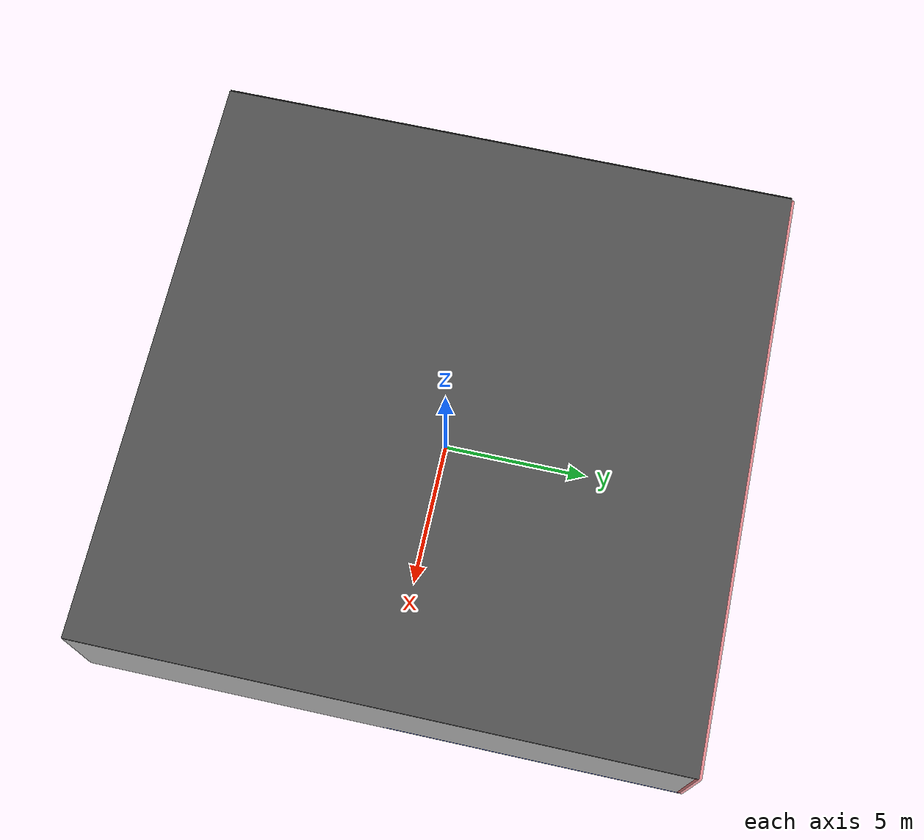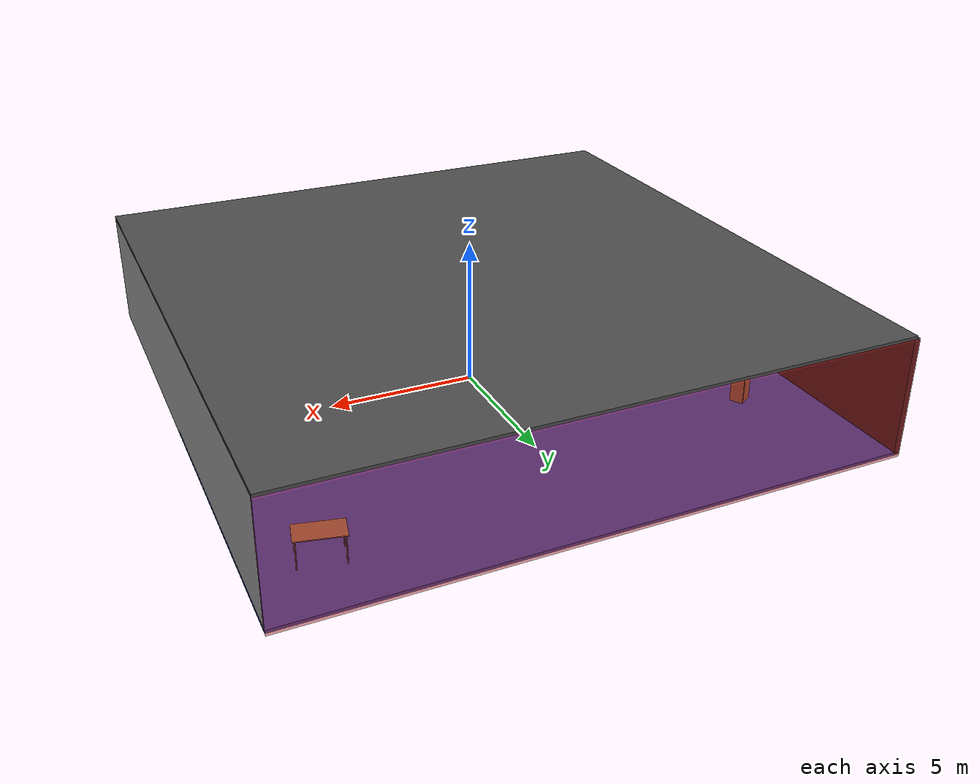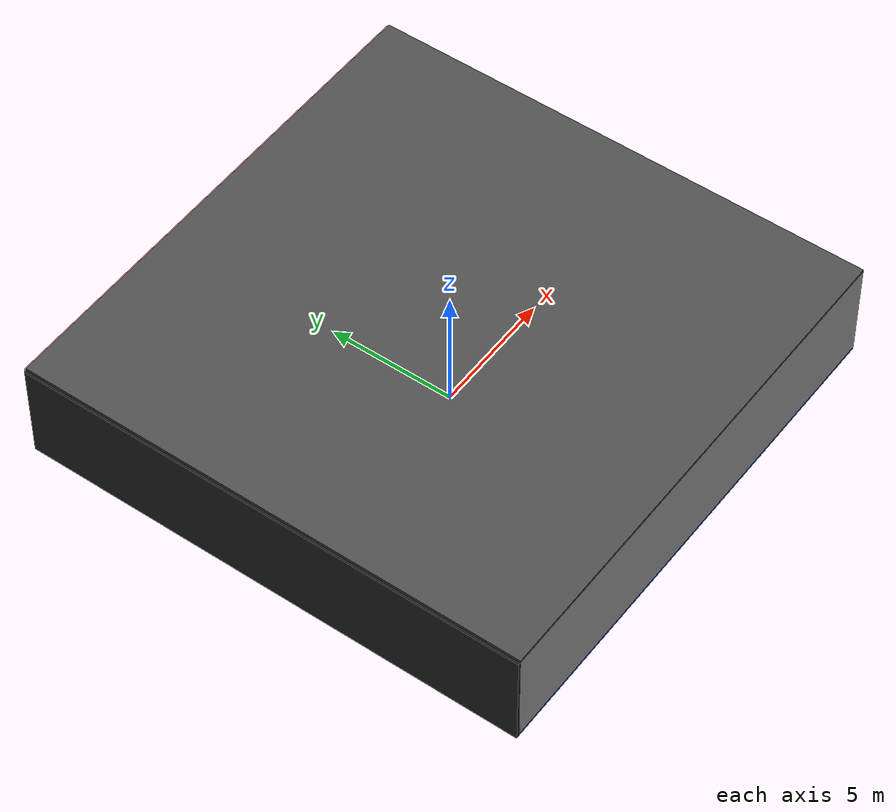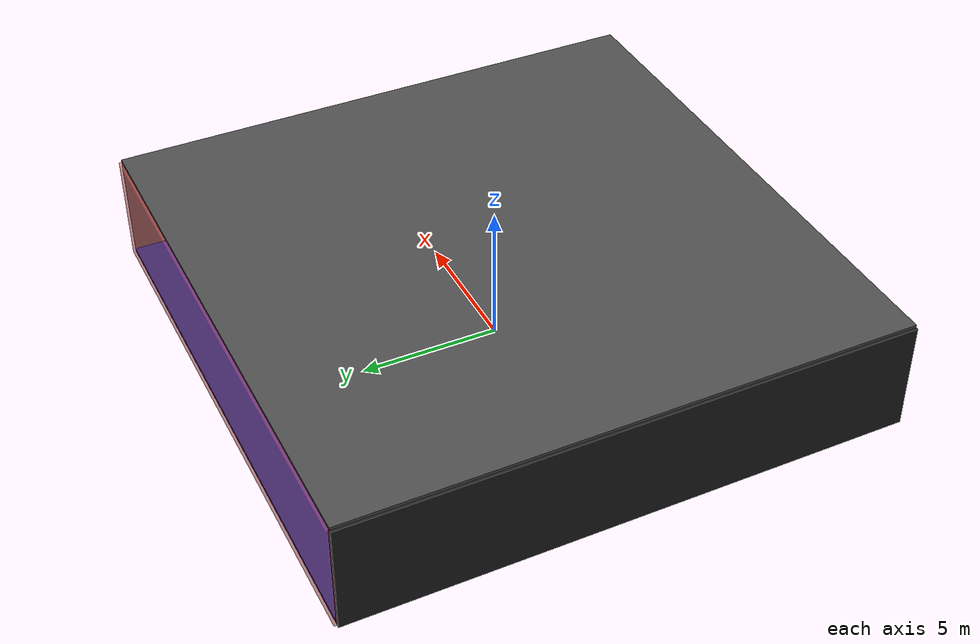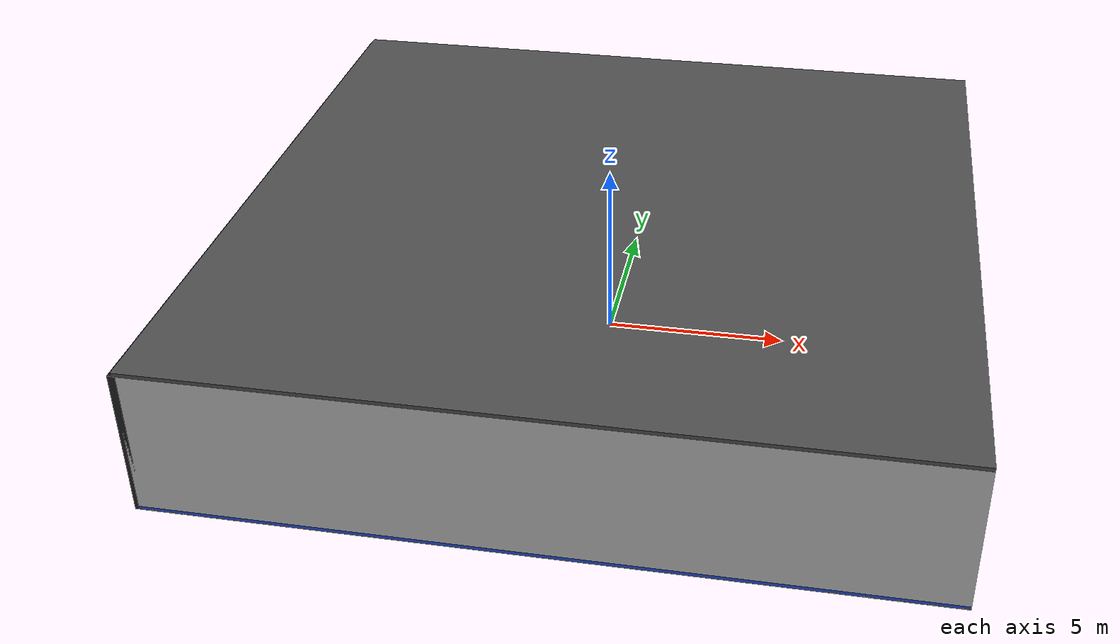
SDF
<sdf version="1.4">
 <world name="default">
  <physics type="ode">
   <max_step_size>0.001</max_step_size>
   <real_time_factor>1</real_time_factor>
   <real_time_update_rate>1000</real_time_update_rate>
   <gravity>0 0 -9.8</gravity>
  </physics>
  <scene><ambient>0.4 0.4 0.4 1</ambient><background>0.7 0.7 0.7 1</background><shadows>1</shadows></scene>
  <model name="Surrounding">
   <static>1</static>
   <link name="Ceiling">
    <collision name="Ceiling_Collision"><geometry><box><size>20 20 0.1</size></box></geometry></collision>
    <visual name="Ceiling_Visual">
     <geometry><box><size>20 20 0.1</size></box></geometry>
     <material>
      <script><uri>file://media/materials/scripts/gazebo.material</uri><name>Gazebo/Road</name></script>
     </material>
    </visual>
    <pose>0 0 4.05 0 0 0</pose>
   </link>
   <link name="Wall_South">
    <collision name="Wall_South_Collision">
     <geometry><box><size>20 0 4</size></box></geometry>
     <pose>0 0 2 0 -0 0</pose>
    </collision>
    <visual name="Wall_South_Visual">
     <pose>0 0 2 0 -0 0</pose>
     <geometry><box><size>20 0 4</size></box></geometry>
     <material>
      <script><uri>file://media/materials/scripts/gazebo.material</uri><name>Gazebo/PioneerBody</name></script>
     </material>
    </visual>
    <velocity_decay><linear>0</linear><angular>0</angular></velocity_decay>
    <pose>0 -10 0 0 -0 0</pose>
   </link>
   <link name="Wall_East">
    <collision name="Wall_21_Collision">
     <geometry><box><size>20 0 4</size></box></geometry>
     <pose>0 0 2 0 -0 0</pose>
    </collision>
    <visual name="Wall_21_Visual">
     <pose>0 0 2 0 -0 0</pose>
     <geometry><box><size>20 0 4</size></box></geometry>
     <material>
      <script><uri>file://media/materials/scripts/gazebo.material</uri><name>Gazebo/Pioneer2Body</name></script>
     </material>
    </visual>
    <velocity_decay><linear>0</linear><angular>0</angular></velocity_decay>
    <pose>10 0 0 0 -0 1.5708</pose>
   </link>
   <link name="Wall_North">
    <collision name="Wall_22_Collision">
     <geometry><box><size>20 0.2 4</size></box></geometry>
     <pose>0 0 2 0 -0 0</pose>
    </collision>
    <visual name="Wall_22_Visual">
     <pose>0 0 2 0 -0 0</pose>
     <geometry><box><size>20 0.2 4</size></box></geometry>
     <material>
      <script><uri>file://media/materials/scripts/gazebo.material</uri><name>Gazebo/RedTransparent</name></script>
     </material>
    </visual>
    <velocity_decay><linear>0</linear><angular>0</angular></velocity_decay>
    <pose>0 10 0 0 -0 0</pose>
   </link>
   <link name="Wall_West">
    <collision name="Wall_23_Collision">
     <geometry><box><size>20 0.2 4</size></box></geometry>
     <pose>0 0 2 0 -0 0</pose>
    </collision>
    <visual name="Wall_23_Visual">
     <pose>0 0 2 0 -0 0</pose>
     <geometry><box><size>20 0.2 4</size></box></geometry>
     <material>
      <script><uri>file://media/materials/scripts/gazebo.material</uri><name>Gazebo/FlatBlack</name></script>
     </material>
    </visual>
    <velocity_decay><linear>0</linear><angular>0</angular></velocity_decay>
    <pose>-10 0 0 0 0 -1.5708</pose>
   </link>
   <link name="Ground_link">
    <collision name="collision">
     <pose>0 0 .05 0 -0 0</pose>
     <geometry><box><size>20 20 0.1</size></box></geometry>
    </collision>
    <visual name="visual">
     <pose>0 0 .05 0 -0 0</pose>
     <geometry><box><size>20 20 0.1</size></box></geometry>
     <material>
      <script><uri>file://media/materials/scripts/gazebo.material</uri><name>Gazebo/BlueLaser</name></script>
     </material>
    </visual>
   </link>
   <static>1</static>
  </model>
  <spherical_coordinates>
   <surface_model>EARTH_WGS84</surface_model>
   <latitude_deg>0</latitude_deg>
   <longitude_deg>0</longitude_deg>
   <elevation>0</elevation>
   <heading_deg>0</heading_deg>
  </spherical_coordinates>
  <light name="lightball_0" type="diffuse">
   <diffuse>0.8 0.8 0.8 1</diffuse>
   <specular>0.2 0.2 0.2 1</specular>
   <attenuation>
    <range>100</range>
    <constant>0.7</constant>
    <linear>0.01</linear>
    <quadratic>0.001</quadratic>
   </attenuation>
   <direction>-0.5 0.1 -0.9</direction>
   <pose>4.24696940294 4.88055297579 1.70848335105 0 0 0</pose>
  </light>
  <light name="lightball_1" type="diffuse">
   <diffuse>0.8 0.8 0.8 1</diffuse>
   <specular>0.2 0.2 0.2 1</specular>
   <attenuation>
    <range>100</range>
    <constant>0.7</constant>
    <linear>0.01</linear>
    <quadratic>0.001</quadratic>
   </attenuation>
   <direction>-0.5 0.1 -0.9</direction>
   <pose>-4.84952494038 1.5995775421 1.14299998437 0 0 0</pose>
  </light>
  <light name="lightball_2" type="diffuse">
   <diffuse>0.8 0.8 0.8 1</diffuse>
   <specular>0.2 0.2 0.2 1</specular>
   <attenuation>
    <range>100</range>
    <constant>0.7</constant>
    <linear>0.01</linear>
    <quadratic>0.001</quadratic>
   </attenuation>
   <direction>-0.5 0.1 -0.9</direction>
   <pose>8.88864777788 4.20122256462 1.74813926389 0 0 0</pose>
  </light>
  <light name="lightball_3" type="diffuse">
   <diffuse>0.8 0.8 0.8 1</diffuse>
   <specular>0.2 0.2 0.2 1</specular>
   <attenuation>
    <range>100</range>
    <constant>0.7</constant>
    <linear>0.01</linear>
    <quadratic>0.001</quadratic>
   </attenuation>
   <direction>-0.5 0.1 -0.9</direction>
   <pose>2.48301458618 0.890316813671 0.913913090073 0 0 0</pose>
  </light>
  <light name="lightball_4" type="diffuse">
   <diffuse>0.8 0.8 0.8 1</diffuse>
   <specular>0.2 0.2 0.2 1</specular>
   <attenuation>
    <range>100</range>
    <constant>0.7</constant>
    <linear>0.01</linear>
    <quadratic>0.001</quadratic>
   </attenuation>
   <direction>-0.5 0.1 -0.9</direction>
   <pose>-6.5516092851 -2.36241911765 0.530192536359 0 0 0</pose>
  </light>
  <light name="lightball_5" type="diffuse">
   <diffuse>0.8 0.8 0.8 1</diffuse>
   <specular>0.2 0.2 0.2 1</specular>
   <attenuation>
    <range>100</range>
    <constant>0.7</constant>
    <linear>0.01</linear>
    <quadratic>0.001</quadratic>
   </attenuation>
   <direction>-0.5 0.1 -0.9</direction>
   <pose>-4.1774446178 -2.00629309089 0.987547956798 0 0 0</pose>
  </light>
  <light name="lightball_6" type="diffuse">
   <diffuse>0.8 0.8 0.8 1</diffuse>
   <specular>0.2 0.2 0.2 1</specular>
   <attenuation>
    <range>100</range>
    <constant>0.7</constant>
    <linear>0.01</linear>
    <quadratic>0.001</quadratic>
   </attenuation>
   <direction>-0.5 0.1 -0.9</direction>
   <pose>9.83585178013 3.30971995937 2.68891817776 0 0 0</pose>
  </light>
  <include><uri>model://cabinet</uri><pose>-7.53742905655 5.24659353898 0 0 0 2.0984468712</pose></include>
  <include><uri>model://cabinet</uri><pose>-4.27261864754 1.3233610644 0 0 0 1.97901267224</pose></include>
  <include>
   <uri>model://robocup_3Dsim_goal</uri>
   <pose>1.17104848452 -2.15725951158 0 0 0 1.1308671509</pose>
  </include>
  <include>
   <uri>model://textured_shapes</uri>
   <pose>4.40965739542 -0.81429021161 0 0 0 0.963234486629</pose>
  </include>
  <include><uri>model://table</uri><pose>7.85462989894 7.80137230374 0 0 0 2.92506354149</pose></include>
 </world>
</sdf>

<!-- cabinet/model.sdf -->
<sdf version="1.5">
  <model name="cabinet">
    <static>true</static>
    <link name="cabinet_bottom_plate">
      <inertial>
        <pose>0 0 -1 0 0 0</pose>
        <inertia>
          <ixx>2.050000</ixx>
          <ixy>0</ixy>
          <ixz>0</ixz>
          <iyy>2.050000</iyy>
          <iyz>0</iyz>
          <izz>2.050000</izz>
        </inertia>
        <mass>25.000000</mass>
      </inertial>
      <collision name="cabinet_bottom_plate_geom">
        <pose>0 0 0.010000 0 0 0</pose>
        <geometry>
          <box>
            <size>0.450000 0.450000 0.020000</size>
          </box>
        </geometry>
      </collision>
      <visual name="cabinet_bottom_plate_geom_visual">
        <pose>0 0 0.010000 0 0 0</pose>
        <geometry>
          <box>
            <size>0.450000 0.450000 0.020000</size>
          </box>
        </geometry>
        <material>
          <script>
            <uri>model://media/materials/scripts/gazebo.material</uri>
            <name>Gazebo/Wood</name>
          </script>
        </material>
      </visual>
      <collision name="cabinet_bottom_plate_geom_cabinet_back_plate">
        <pose>0.235000 0 0.510000 0 0 0</pose>
        <geometry>
          <box>
            <size>0.020000 0.450000 1.020000</size>
          </box>
        </geometry>
      </collision>
      <visual name="cabinet_bottom_plate_geom_cabinet_back_plate_visual">
        <pose>0.235000 0 0.510000 0 0 0</pose>
        <geometry>
          <box>
            <size>0.020000 0.450000 1.020000</size>
          </box>
        </geometry>
        <material>
          <script>
            <uri>model://media/materials/scripts/gazebo.material</uri>
            <name>Gazebo/Wood</name>
          </script>
        </material>
      </visual>
      <collision name="cabinet_bottom_plate_geom_cabinet_left_plate">
        <pose>0 0.235000 0.510000 0 0 0</pose>
        <geometry>
          <box>
            <size>0.450000 0.020000 1.020000</size>
          </box>
        </geometry>
      </collision>
      <visual name="cabinet_bottom_plate_geom_cabinet_left_plate_visual">
        <pose>0 0.235000 0.510000 0 0 0</pose>
        <geometry>
          <box>
            <size>0.450000 0.020000 1.020000</size>
          </box>
        </geometry>
        <material>
          <script>
            <uri>model://media/materials/scripts/gazebo.material</uri>
            <name>Gazebo/Wood</name>
          </script>
        </material>
      </visual>
      <collision name="cabinet_bottom_plate_geom_cabinet_middle_plate">
        <pose>0 0 0.510000 0 0 0</pose>
        <geometry>
          <box>
            <size>0.450000 0.450000 0.020000</size>
          </box>
        </geometry>
      </collision>
      <visual name="cabinet_bottom_plate_geom_cabinet_middle_plate_visual">
        <pose>0 0 0.510000 0 0 0</pose>
        <geometry>
          <box>
            <size>0.450000 0.450000 0.020000</size>
          </box>
        </geometry>
        <material>
          <script>
            <uri>model://media/materials/scripts/gazebo.material</uri>
            <name>Gazebo/Wood</name>
          </script>
        </material>
      </visual>
      <collision name="cabinet_bottom_plate_geom_cabinet_right_plate">
        <pose>0 -0.235000 0.510000 0 0 0</pose>
        <geometry>
          <box>
            <size>0.450000 0.020000 1.020000</size>
          </box>
        </geometry>
      </collision>
      <visual name="cabinet_bottom_plate_geom_cabinet_right_plate_visual">
        <pose>0 -0.235000 0.510000 0 0 0</pose>
        <geometry>
          <box>
            <size>0.450000 0.020000 1.020000</size>
          </box>
        </geometry>
        <material>
          <script>
            <uri>model://media/materials/scripts/gazebo.material</uri>
            <name>Gazebo/Wood</name>
          </script>
        </material>
      </visual>
      <collision name="cabinet_bottom_plate_geom_cabinet_top_plate">
        <pose>0 0 1.010000 0 0 0</pose>
        <geometry>
          <box>
            <size>0.450000 0.450000 0.020000</size>
          </box>
        </geometry>
      </collision>
      <visual name="cabinet_bottom_plate_geom_cabinet_top_plate_visual">
        <pose>0 0 1.010000 0 0 0</pose>
        <geometry>
          <box>
            <size>0.450000 0.450000 0.020000</size>
          </box>
        </geometry>
        <material>
          <script>
            <uri>model://media/materials/scripts/gazebo.material</uri>
            <name>Gazebo/Wood</name>
          </script>
        </material>
      </visual>
    </link>
  </model>
</sdf>

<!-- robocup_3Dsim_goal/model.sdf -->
<sdf version="1.5">
  <model name="robocup_3d_goal">
    <static>true</static>
    <link name="left_post">
      <pose>0 1.05 0.45 0 0 0</pose>
      <collision name="collision">
        <geometry>
          <cylinder>
            <radius>0.05</radius>
            <length>0.9</length>
          </cylinder>
        </geometry>
      </collision>
      <visual name="visual">
        <geometry>
          <cylinder>
            <radius>0.05</radius>
            <length>0.9</length>
          </cylinder>
        </geometry>
        <material>
          <script>
            <uri>file://media/materials/scripts/gazebo.material</uri>
            <name>Gazebo/ZincYellow</name>
          </script>
        </material>
      </visual>
    </link>
    <link name="left_support_horiz_lower">
      <pose>0.30 1.05 0.01 0 0 0</pose>
      <collision name="collision">
        <geometry>
          <box>
            <size>0.50 0.02 0.02</size>
          </box>
        </geometry>
      </collision>
      <visual name="visual">
        <geometry>
          <box>
            <size>0.50 0.02 0.02</size>
          </box>
        </geometry>
        <material>
          <script>
            <uri>file://media/materials/scripts/gazebo.material</uri>
            <name>Gazebo/White</name>
          </script>
        </material>
      </visual>
    </link>
    <link name="left_support_horiz_upper">
      <pose>0.30 1.05 0.79 0 0 0</pose>
      <collision name="collision">
        <geometry>
          <box>
            <size>0.50 0.02 0.02</size>
          </box>
        </geometry>
      </collision>
      <visual name="visual">
        <geometry>
          <box>
            <size>0.50 0.02 0.02</size>
          </box>
        </geometry>
        <material>
          <script>
            <uri>file://media/materials/scripts/gazebo.material</uri>
            <name>Gazebo/White</name>
          </script>
        </material>
      </visual>
    </link>
    <link name="left_support_vertical">
      <pose>0.56 1.05 0.4 0 1.5708 0</pose>
      <collision name="collision">
        <geometry>
          <box>
            <size>0.80 0.02 0.02</size>
          </box>
        </geometry>
      </collision>
      <visual name="visual">
        <geometry>
          <box>
            <size>0.80 0.02 0.02</size>
          </box>
        </geometry>
        <material>
          <script>
            <uri>file://media/materials/scripts/gazebo.material</uri>
            <name>Gazebo/White</name>
          </script>
        </material>
      </visual>
    </link>
    <link name="right_support_horiz_lower">
      <pose>0.30 -1.05 0.01 0 0 0</pose>
      <collision name="collision">
        <geometry>
          <box>
            <size>0.50 0.02 0.02</size>
          </box>
        </geometry>
      </collision>
      <visual name="visual">
        <geometry>
          <box>
            <size>0.50 0.02 0.02</size>
          </box>
        </geometry>
        <material>
          <script>
            <uri>file://media/materials/scripts/gazebo.material</uri>
            <name>Gazebo/White</name>
          </script>
        </material>
      </visual>
    </link>
    <link name="right_support_horiz_upper">
      <pose>0.30 -1.05 0.79 0 0 0</pose>
      <collision name="collision">
        <geometry>
          <box>
            <size>0.50 0.02 0.02</size>
          </box>
        </geometry>
      </collision>
      <visual name="visual">
        <geometry>
          <box>
            <size>0.50 0.02 0.02</size>
          </box>
        </geometry>
        <material>
          <script>
            <uri>file://media/materials/scripts/gazebo.material</uri>
            <name>Gazebo/White</name>
          </script>
        </material>
      </visual>
    </link>
    <link name="right_support_vertical">
      <pose>0.56 -1.05 0.4 0 1.5708 0</pose>
      <collision name="collision">
        <geometry>
          <box>
            <size>0.80 0.02 0.02</size>
          </box>
        </geometry>
      </collision>
      <visual name="visual">
        <geometry>
          <box>
            <size>0.80 0.02 0.02</size>
          </box>
        </geometry>
        <material>
          <script>
            <uri>file://media/materials/scripts/gazebo.material</uri>
            <name>Gazebo/White</name>
          </script>
        </material>
      </visual>
    </link>
    <link name="center_support_horiz_lower">
      <pose>0.56 0 0.01 0 1.5708 0</pose>
      <collision name="collision">
        <geometry>
          <box>
            <size>0.02 2.08 0.02</size>
          </box>
        </geometry>
      </collision>
      <visual name="visual">
        <geometry>
          <box>
            <size>0.02 2.08 0.02</size>
          </box>
        </geometry>
        <material>
          <script>
            <uri>file://media/materials/scripts/gazebo.material</uri>
            <name>Gazebo/White</name>
          </script>
        </material>
      </visual>
    </link>
    <link name="center_support_horiz_upper">
      <pose>0.56 0 0.79 0 1.5708 0</pose>
      <collision name="collision">
        <geometry>
          <box>
            <size>0.02 2.08 0.02</size>
          </box>
        </geometry>
      </collision>
      <visual name="visual">
        <geometry>
          <box>
            <size>0.02 2.08 0.02</size>
          </box>
        </geometry>
        <material>
          <script>
            <uri>file://media/materials/scripts/gazebo.material</uri>
            <name>Gazebo/White</name>
          </script>
        </material>
      </visual>
    </link>
    <link name="right_post">
      <pose>0 -1.05 0.45 0 0 0</pose>
      <collision name="collision">
        <geometry>
          <cylinder>
            <radius>0.05</radius>
            <length>0.9</length>
          </cylinder>
        </geometry>
      </collision>
      <visual name="visual">
        <geometry>
          <cylinder>
            <radius>0.05</radius>
            <length>0.9</length>
          </cylinder>
        </geometry>
        <material>
          <script>
            <uri>file://media/materials/scripts/gazebo.material</uri>
            <name>Gazebo/ZincYellow</name>
          </script>
        </material>
      </visual>
    </link>
    <link name="crossbar">
      <pose>0 0 0.85 1.57 1.57 0</pose>
      <collision name="collision">
        <geometry>
          <cylinder>
            <radius>0.05</radius>
            <length>2.0</length>
          </cylinder>
        </geometry>
      </collision>
      <visual name="visual">
        <geometry>
          <cylinder>
            <radius>0.05</radius>
            <length>2.0</length>
          </cylinder>
        </geometry>
        <material>
          <script>
            <uri>file://media/materials/scripts/gazebo.material</uri>
            <name>Gazebo/ZincYellow</name>
          </script>
        </material>
      </visual>
    </link>
    <link name="center_net">
      <pose>0.56 0 0.40 0 0 0</pose>
      <collision name="collision">
        <geometry>
          <box>
            <size>0.01 2.1 0.80</size>
          </box>
        </geometry>
      </collision>
      <visual name="visual">
        <geometry>
          <box>
            <size>0.01 2.1 0.80</size>
          </box>
        </geometry>
        <material>
          <script>
            <uri>model://../model_source/models/robocup09_spl_field/materials/scripts/</uri>
            <uri>model://../model_source/models/robocup09_spl_field/materials/textures/</uri>
            <name>RoboCup/Net</name>
          </script>
        </material>
      </visual>
    </link>
    <link name="left_net">
      <pose>0.30 1.05 0.40 0 0 0</pose>
      <collision name="collision">
        <geometry>
          <box>
            <size>0.50 0.01 0.76</size>
          </box>
        </geometry>
      </collision>
      <visual name="visual">
        <geometry>
          <box>
            <size>0.50 0.01 0.76</size>
          </box>
        </geometry>
        <material>
          <script>
            <uri>model://../model_source/models/robocup09_spl_field/materials/scripts/</uri>
            <uri>model://../model_source/models/robocup09_spl_field/materials/textures/</uri>
            <name>RoboCup/Net</name>
          </script>
        </material>
      </visual>
    </link>
    <link name="right_net">
      <pose>0.30 -1.05 0.40 0 0 0</pose>
      <collision name="collision">
        <geometry>
          <box>
            <size>0.50 0.01 0.76</size>
          </box>
        </geometry>
      </collision>
      <visual name="visual">
        <geometry>
          <box>
            <size>0.50 0.01 0.76</size>
          </box>
        </geometry>
        <material>
          <script>
            <uri>model://../model_source/models/robocup09_spl_field/materials/scripts/</uri>
            <uri>model://../model_source/models/robocup09_spl_field/materials/textures/</uri>
            <name>RoboCup/Net</name>
          </script>
        </material>
      </visual>
    </link>
  </model>
</sdf>

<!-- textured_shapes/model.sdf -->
<sdf version="1.6">
  <model name="textured_shapes">
    <pose>0 0 0.5 0 0 0</pose>
    <link name="box">
      <pose>0 -1.5 0 0 0 0</pose>
      <collision name="collision">
        <geometry>
          <box>
            <size>1 1 1</size>
          </box>
        </geometry>
      </collision>
      <visual name="visual">
        <geometry>
          <box>
            <size>1 1 1</size>
          </box>
        </geometry>
        <material>
          <script>
            <uri>model://../model_source/models/textured_shapes/materials/scripts</uri>
            <uri>model://../model_source/models/textured_shapes/materials/textures</uri>
            <name>TexturedShape/Squares</name>
          </script>
        </material>
      </visual>
    </link>
    <link name="sphere">
      <collision name="collision">
        <geometry>
          <sphere>
            <radius>0.5</radius>
          </sphere>
        </geometry>
      </collision>
      <visual name="visual">
        <geometry>
          <sphere>
            <radius>0.5</radius>
          </sphere>
        </geometry>
        <material>
          <script>
            <uri>model://../model_source/models/textured_shapes/materials/scripts</uri>
            <uri>model://../model_source/models/textured_shapes/materials/textures</uri>
            <name>TexturedShape/Squares</name>
          </script>
        </material>
      </visual>
    </link>
    <link name="cylinder">
      <pose>0 1.5 0 0 0 0</pose>
      <collision name="collision">
        <geometry>
          <cylinder>
            <radius>0.5</radius>
            <length>1</length>
          </cylinder>
        </geometry>
      </collision>
      <visual name="visual">
        <geometry>
          <cylinder>
            <radius>0.5</radius>
            <length>1</length>
          </cylinder>
        </geometry>
        <material>
          <script>
            <uri>model://../model_source/models/textured_shapes/materials/scripts</uri>
            <uri>model://../model_source/models/textured_shapes/materials/textures</uri>
            <name>TexturedShape/Squares</name>
          </script>
        </material>
      </visual>
    </link>
  </model>
</sdf>

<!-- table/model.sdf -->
<sdf version="1.5">
  <model name="table">
    <static>true</static>
    <link name="link">
      <collision name="surface">
        <pose>0 0 1.0 0 0 0</pose>
        <geometry>
          <box>
            <size>1.5 0.8 0.03</size>
          </box>
        </geometry>
        <surface>
          <friction>
            <ode>
              <mu>0.6</mu>
              <mu2>0.6</mu2>
            </ode>
          </friction>
        </surface>
      </collision>
      <visual name="visual1">
        <pose>0 0 1.0 0 0 0</pose>
        <geometry>
          <box>
            <size>1.5 0.8 0.03</size>
          </box>
        </geometry>
        <material>
          <script>
            <uri>model://media/materials/scripts/gazebo.material</uri>
            <name>Gazebo/Wood</name>
          </script>
        </material>
      </visual>
      <collision name="front_left_leg">
        <pose>0.68 0.38 0.5 0 0 0</pose>
        <geometry>
          <cylinder>
            <radius>0.02</radius>
            <length>1.0</length>
          </cylinder>
        </geometry>
      </collision>
      <visual name="front_left_leg">
        <pose>0.68 0.38 0.5 0 0 0</pose>
        <geometry>
          <cylinder>
            <radius>0.02</radius>
            <length>1.0</length>
          </cylinder>
        </geometry>
        <material>
          <script>
            <uri>model://media/materials/scripts/gazebo.material</uri>
            <name>Gazebo/Grey</name>
          </script>
        </material>
      </visual>
      <collision name="front_right_leg">
        <pose>0.68 -0.38 0.5 0 0 0</pose>
        <geometry>
          <cylinder>
            <radius>0.02</radius>
            <length>1.0</length>
          </cylinder>
        </geometry>
      </collision>
      <visual name="front_right_leg">
        <pose>0.68 -0.38 0.5 0 0 0</pose>
        <geometry>
          <cylinder>
            <radius>0.02</radius>
            <length>1.0</length>
          </cylinder>
        </geometry>
        <material>
          <script>
            <uri>model://media/materials/scripts/gazebo.material</uri>
            <name>Gazebo/Grey</name>
          </script>
        </material>
      </visual>
      <collision name="back_right_leg">
        <pose>-0.68 -0.38 0.5 0 0 0</pose>
        <geometry>
          <cylinder>
            <radius>0.02</radius>
            <length>1.0</length>
          </cylinder>
        </geometry>
      </collision>
      <visual name="back_right_leg">
        <pose>-0.68 -0.38 0.5 0 0 0</pose>
        <geometry>
          <cylinder>
            <radius>0.02</radius>
            <length>1.0</length>
          </cylinder>
        </geometry>
        <material>
          <script>
            <uri>model://media/materials/scripts/gazebo.material</uri>
            <name>Gazebo/Grey</name>
          </script>
        </material>
      </visual>
      <collision name="back_left_leg">
        <pose>-0.68 0.38 0.5 0 0 0</pose>
        <geometry>
          <cylinder>
            <radius>0.02</radius>
            <length>1.0</length>
          </cylinder>
        </geometry>
      </collision>
      <visual name="back_left_leg">
        <pose>-0.68 0.38 0.5 0 0 0</pose>
        <geometry>
          <cylinder>
            <radius>0.02</radius>
            <length>1.0</length>
          </cylinder>
        </geometry>
        <material>
          <script>
            <uri>model://media/materials/scripts/gazebo.material</uri>
            <name>Gazebo/Grey</name>
          </script>
        </material>
      </visual>
    </link>
  </model>
</sdf>
